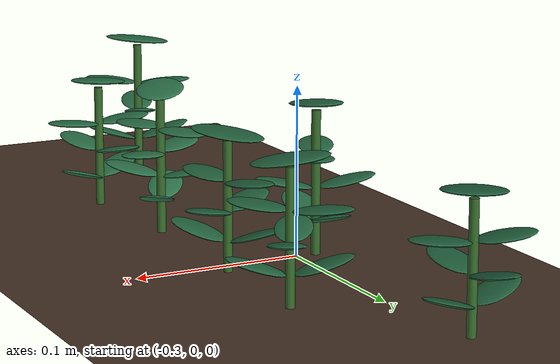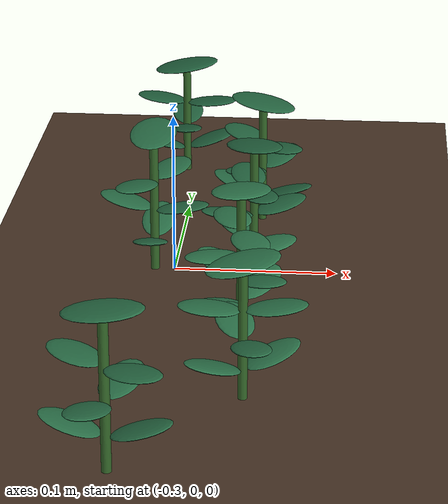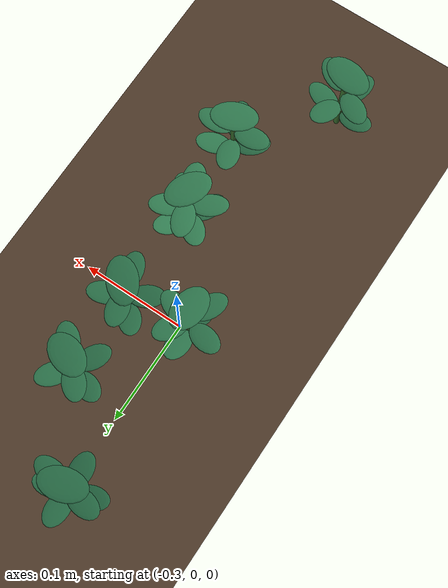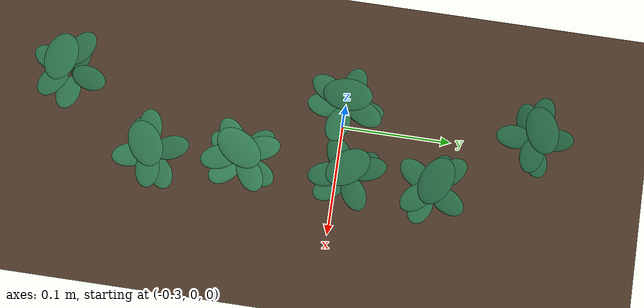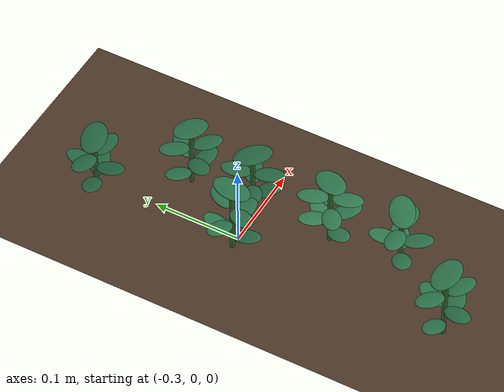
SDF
<sdf version="1.9">
 <world name="jim_field">
  <model name="ground_plane">
   <static>true</static>
   <link name="link">
    <collision name="collision">
     <geometry><plane><normal>0 0 1</normal><size>40 40</size></plane></geometry>
    </collision>
    <visual name="visual">
     <geometry><plane><normal>0 0 1</normal><size>40 40</size></plane></geometry>
     <material>
      <ambient>0.20 0.15 0.11 1</ambient>
      <diffuse>0.30 0.22 0.16 1</diffuse>
      <specular>0.01 0.01 0.01 1</specular>
     </material>
    </visual>
   </link>
  </model>
  <model name="field">
   <static>true</static>
   <pose>0.1837 -0.2516 0 0 0 0</pose>
   <model name="crop_85">
    <static>true</static>
    <pose>-0.4930 0.0031 0 0 0 0</pose>
    <link name="link">
     <visual name="stem">
      <pose>0 0 0.0426 0 0 0</pose>
      <geometry><cylinder><radius>0.0027</radius><length>0.0852</length></cylinder></geometry>
      <material>
       <ambient>0.10 0.22 0.09 1</ambient>
       <diffuse>0.20 0.40 0.16 1</diffuse>
       <specular>0.05 0.06 0.05 1</specular>
      </material>
     </visual>
     <visual name="leaflet_0_0">
      <pose>0.0184 -0.0023 0.0256 0 -0.300 6.1589</pose>
      <geometry><ellipsoid><radii>0.0170 0.0105 0.0016</radii></ellipsoid></geometry>
      <material>
       <ambient>0.086 0.227 0.131 1</ambient>
       <diffuse>0.162 0.433 0.277 1</diffuse>
       <specular>0.05 0.06 0.05 1</specular>
      </material>
     </visual>
     <visual name="leaflet_0_1">
      <pose>-0.0184 0.0023 0.0256 0 -0.300 9.3005</pose>
      <geometry><ellipsoid><radii>0.0170 0.0105 0.0016</radii></ellipsoid></geometry>
      <material>
       <ambient>0.086 0.227 0.131 1</ambient>
       <diffuse>0.162 0.433 0.277 1</diffuse>
       <specular>0.05 0.06 0.05 1</specular>
      </material>
     </visual>
     <visual name="leaflet_1_0">
      <pose>0.0063 0.0175 0.0432 0 -0.200 7.5089</pose>
      <geometry><ellipsoid><radii>0.0170 0.0105 0.0016</radii></ellipsoid></geometry>
      <material>
       <ambient>0.086 0.227 0.131 1</ambient>
       <diffuse>0.162 0.433 0.277 1</diffuse>
       <specular>0.05 0.06 0.05 1</specular>
      </material>
     </visual>
     <visual name="leaflet_1_1">
      <pose>-0.0063 -0.0175 0.0432 0 -0.200 10.6505</pose>
      <geometry><ellipsoid><radii>0.0170 0.0105 0.0016</radii></ellipsoid></geometry>
      <material>
       <ambient>0.086 0.227 0.131 1</ambient>
       <diffuse>0.162 0.433 0.277 1</diffuse>
       <specular>0.05 0.06 0.05 1</specular>
      </material>
     </visual>
     <visual name="leaflet_2_0">
      <pose>-0.0157 0.0099 0.0608 0 -0.100 8.8589</pose>
      <geometry><ellipsoid><radii>0.0170 0.0105 0.0016</radii></ellipsoid></geometry>
      <material>
       <ambient>0.086 0.227 0.131 1</ambient>
       <diffuse>0.162 0.433 0.277 1</diffuse>
       <specular>0.05 0.06 0.05 1</specular>
      </material>
     </visual>
     <visual name="leaflet_2_1">
      <pose>0.0157 -0.0099 0.0608 0 -0.100 12.0005</pose>
      <geometry><ellipsoid><radii>0.0170 0.0105 0.0016</radii></ellipsoid></geometry>
      <material>
       <ambient>0.086 0.227 0.131 1</ambient>
       <diffuse>0.162 0.433 0.277 1</diffuse>
       <specular>0.05 0.06 0.05 1</specular>
      </material>
     </visual>
     <visual name="leaflet_terminal">
      <pose>0 0 0.0892 0 -0.12 6.1589</pose>
      <geometry><ellipsoid><radii>0.0215 0.0140 0.0018</radii></ellipsoid></geometry>
      <material>
       <ambient>0.086 0.227 0.131 1</ambient>
       <diffuse>0.162 0.433 0.277 1</diffuse>
       <specular>0.05 0.06 0.05 1</specular>
      </material>
     </visual>
    </link>
   </model>
   <model name="crop_103">
    <static>true</static>
    <pose>-0.4302 0.0858 0 0 0 0</pose>
    <link name="link">
     <visual name="stem">
      <pose>0 0 0.0377 0 0 0</pose>
      <geometry><cylinder><radius>0.0026</radius><length>0.0755</length></cylinder></geometry>
      <material>
       <ambient>0.10 0.22 0.09 1</ambient>
       <diffuse>0.20 0.40 0.16 1</diffuse>
       <specular>0.05 0.06 0.05 1</specular>
      </material>
     </visual>
     <visual name="leaflet_0_0">
      <pose>0.0155 0.0092 0.0226 0 -0.300 0.5376</pose>
      <geometry><ellipsoid><radii>0.0170 0.0105 0.0016</radii></ellipsoid></geometry>
      <material>
       <ambient>0.092 0.236 0.139 1</ambient>
       <diffuse>0.173 0.452 0.290 1</diffuse>
       <specular>0.05 0.06 0.05 1</specular>
      </material>
     </visual>
     <visual name="leaflet_0_1">
      <pose>-0.0155 -0.0092 0.0226 0 -0.300 3.6792</pose>
      <geometry><ellipsoid><radii>0.0170 0.0105 0.0016</radii></ellipsoid></geometry>
      <material>
       <ambient>0.092 0.236 0.139 1</ambient>
       <diffuse>0.173 0.452 0.290 1</diffuse>
       <specular>0.05 0.06 0.05 1</specular>
      </material>
     </visual>
     <visual name="leaflet_1_0">
      <pose>-0.0056 0.0171 0.0383 0 -0.200 1.8876</pose>
      <geometry><ellipsoid><radii>0.0170 0.0105 0.0016</radii></ellipsoid></geometry>
      <material>
       <ambient>0.092 0.236 0.139 1</ambient>
       <diffuse>0.173 0.452 0.290 1</diffuse>
       <specular>0.05 0.06 0.05 1</specular>
      </material>
     </visual>
     <visual name="leaflet_1_1">
      <pose>0.0056 -0.0171 0.0383 0 -0.200 5.0292</pose>
      <geometry><ellipsoid><radii>0.0170 0.0105 0.0016</radii></ellipsoid></geometry>
      <material>
       <ambient>0.092 0.236 0.139 1</ambient>
       <diffuse>0.173 0.452 0.290 1</diffuse>
       <specular>0.05 0.06 0.05 1</specular>
      </material>
     </visual>
     <visual name="leaflet_2_0">
      <pose>-0.0179 -0.0017 0.0539 0 -0.100 3.2376</pose>
      <geometry><ellipsoid><radii>0.0170 0.0105 0.0016</radii></ellipsoid></geometry>
      <material>
       <ambient>0.092 0.236 0.139 1</ambient>
       <diffuse>0.173 0.452 0.290 1</diffuse>
       <specular>0.05 0.06 0.05 1</specular>
      </material>
     </visual>
     <visual name="leaflet_2_1">
      <pose>0.0179 0.0017 0.0539 0 -0.100 6.3792</pose>
      <geometry><ellipsoid><radii>0.0170 0.0105 0.0016</radii></ellipsoid></geometry>
      <material>
       <ambient>0.092 0.236 0.139 1</ambient>
       <diffuse>0.173 0.452 0.290 1</diffuse>
       <specular>0.05 0.06 0.05 1</specular>
      </material>
     </visual>
     <visual name="leaflet_terminal">
      <pose>0 0 0.0795 0 -0.12 0.5376</pose>
      <geometry><ellipsoid><radii>0.0215 0.0140 0.0018</radii></ellipsoid></geometry>
      <material>
       <ambient>0.092 0.236 0.139 1</ambient>
       <diffuse>0.173 0.452 0.290 1</diffuse>
       <specular>0.05 0.06 0.05 1</specular>
      </material>
     </visual>
    </link>
   </model>
   <model name="crop_120">
    <static>true</static>
    <pose>-0.4367 0.1667 0 0 0 0</pose>
    <link name="link">
     <visual name="stem">
      <pose>0 0 0.0419 0 0 0</pose>
      <geometry><cylinder><radius>0.0027</radius><length>0.0837</length></cylinder></geometry>
      <material>
       <ambient>0.10 0.22 0.09 1</ambient>
       <diffuse>0.20 0.40 0.16 1</diffuse>
       <specular>0.05 0.06 0.05 1</specular>
      </material>
     </visual>
     <visual name="leaflet_0_0">
      <pose>-0.0098 -0.0156 0.0251 0 -0.300 4.1522</pose>
      <geometry><ellipsoid><radii>0.0170 0.0105 0.0016</radii></ellipsoid></geometry>
      <material>
       <ambient>0.098 0.247 0.147 1</ambient>
       <diffuse>0.186 0.473 0.305 1</diffuse>
       <specular>0.05 0.06 0.05 1</specular>
      </material>
     </visual>
     <visual name="leaflet_0_1">
      <pose>0.0098 0.0156 0.0251 0 -0.300 7.2938</pose>
      <geometry><ellipsoid><radii>0.0170 0.0105 0.0016</radii></ellipsoid></geometry>
      <material>
       <ambient>0.098 0.247 0.147 1</ambient>
       <diffuse>0.186 0.473 0.305 1</diffuse>
       <specular>0.05 0.06 0.05 1</specular>
      </material>
     </visual>
     <visual name="leaflet_1_0">
      <pose>0.0131 -0.0130 0.0381 0 -0.200 5.5022</pose>
      <geometry><ellipsoid><radii>0.0170 0.0105 0.0016</radii></ellipsoid></geometry>
      <material>
       <ambient>0.098 0.247 0.147 1</ambient>
       <diffuse>0.186 0.473 0.305 1</diffuse>
       <specular>0.05 0.06 0.05 1</specular>
      </material>
     </visual>
     <visual name="leaflet_1_1">
      <pose>-0.0131 0.0130 0.0381 0 -0.200 8.6438</pose>
      <geometry><ellipsoid><radii>0.0170 0.0105 0.0016</radii></ellipsoid></geometry>
      <material>
       <ambient>0.098 0.247 0.147 1</ambient>
       <diffuse>0.186 0.473 0.305 1</diffuse>
       <specular>0.05 0.06 0.05 1</specular>
      </material>
     </visual>
     <visual name="leaflet_2_0">
      <pose>0.0156 0.0099 0.0511 0 -0.100 6.8522</pose>
      <geometry><ellipsoid><radii>0.0170 0.0105 0.0016</radii></ellipsoid></geometry>
      <material>
       <ambient>0.098 0.247 0.147 1</ambient>
       <diffuse>0.186 0.473 0.305 1</diffuse>
       <specular>0.05 0.06 0.05 1</specular>
      </material>
     </visual>
     <visual name="leaflet_2_1">
      <pose>-0.0156 -0.0099 0.0511 0 -0.100 9.9938</pose>
      <geometry><ellipsoid><radii>0.0170 0.0105 0.0016</radii></ellipsoid></geometry>
      <material>
       <ambient>0.098 0.247 0.147 1</ambient>
       <diffuse>0.186 0.473 0.305 1</diffuse>
       <specular>0.05 0.06 0.05 1</specular>
      </material>
     </visual>
     <visual name="leaflet_3_0">
      <pose>-0.0063 0.0174 0.0641 0 0.000 8.2022</pose>
      <geometry><ellipsoid><radii>0.0170 0.0105 0.0016</radii></ellipsoid></geometry>
      <material>
       <ambient>0.098 0.247 0.147 1</ambient>
       <diffuse>0.186 0.473 0.305 1</diffuse>
       <specular>0.05 0.06 0.05 1</specular>
      </material>
     </visual>
     <visual name="leaflet_3_1">
      <pose>0.0063 -0.0174 0.0641 0 0.000 11.3438</pose>
      <geometry><ellipsoid><radii>0.0170 0.0105 0.0016</radii></ellipsoid></geometry>
      <material>
       <ambient>0.098 0.247 0.147 1</ambient>
       <diffuse>0.186 0.473 0.305 1</diffuse>
       <specular>0.05 0.06 0.05 1</specular>
      </material>
     </visual>
     <visual name="leaflet_terminal">
      <pose>0 0 0.0877 0 -0.12 4.1522</pose>
      <geometry><ellipsoid><radii>0.0215 0.0140 0.0018</radii></ellipsoid></geometry>
      <material>
       <ambient>0.098 0.247 0.147 1</ambient>
       <diffuse>0.186 0.473 0.305 1</diffuse>
       <specular>0.05 0.06 0.05 1</specular>
      </material>
     </visual>
    </link>
   </model>
   <model name="crop_136">
    <static>true</static>
    <pose>-0.4959 0.2518 0 0 0 0</pose>
    <link name="link">
     <visual name="stem">
      <pose>0 0 0.0425 0 0 0</pose>
      <geometry><cylinder><radius>0.0027</radius><length>0.0850</length></cylinder></geometry>
      <material>
       <ambient>0.10 0.22 0.09 1</ambient>
       <diffuse>0.20 0.40 0.16 1</diffuse>
       <specular>0.05 0.06 0.05 1</specular>
      </material>
     </visual>
     <visual name="leaflet_0_0">
      <pose>0.0007 0.0185 0.0255 0 -0.300 1.5306</pose>
      <geometry><ellipsoid><radii>0.0170 0.0105 0.0016</radii></ellipsoid></geometry>
      <material>
       <ambient>0.087 0.228 0.132 1</ambient>
       <diffuse>0.163 0.435 0.279 1</diffuse>
       <specular>0.05 0.06 0.05 1</specular>
      </material>
     </visual>
     <visual name="leaflet_0_1">
      <pose>-0.0007 -0.0185 0.0255 0 -0.300 4.6722</pose>
      <geometry><ellipsoid><radii>0.0170 0.0105 0.0016</radii></ellipsoid></geometry>
      <material>
       <ambient>0.087 0.228 0.132 1</ambient>
       <diffuse>0.163 0.435 0.279 1</diffuse>
       <specular>0.05 0.06 0.05 1</specular>
      </material>
     </visual>
     <visual name="leaflet_1_0">
      <pose>-0.0179 0.0048 0.0431 0 -0.200 2.8806</pose>
      <geometry><ellipsoid><radii>0.0170 0.0105 0.0016</radii></ellipsoid></geometry>
      <material>
       <ambient>0.087 0.228 0.132 1</ambient>
       <diffuse>0.163 0.435 0.279 1</diffuse>
       <specular>0.05 0.06 0.05 1</specular>
      </material>
     </visual>
     <visual name="leaflet_1_1">
      <pose>0.0179 -0.0048 0.0431 0 -0.200 6.0222</pose>
      <geometry><ellipsoid><radii>0.0170 0.0105 0.0016</radii></ellipsoid></geometry>
      <material>
       <ambient>0.087 0.228 0.132 1</ambient>
       <diffuse>0.163 0.435 0.279 1</diffuse>
       <specular>0.05 0.06 0.05 1</specular>
      </material>
     </visual>
     <visual name="leaflet_2_0">
      <pose>-0.0086 -0.0164 0.0607 0 -0.100 4.2306</pose>
      <geometry><ellipsoid><radii>0.0170 0.0105 0.0016</radii></ellipsoid></geometry>
      <material>
       <ambient>0.087 0.228 0.132 1</ambient>
       <diffuse>0.163 0.435 0.279 1</diffuse>
       <specular>0.05 0.06 0.05 1</specular>
      </material>
     </visual>
     <visual name="leaflet_2_1">
      <pose>0.0086 0.0164 0.0607 0 -0.100 7.3722</pose>
      <geometry><ellipsoid><radii>0.0170 0.0105 0.0016</radii></ellipsoid></geometry>
      <material>
       <ambient>0.087 0.228 0.132 1</ambient>
       <diffuse>0.163 0.435 0.279 1</diffuse>
       <specular>0.05 0.06 0.05 1</specular>
      </material>
     </visual>
     <visual name="leaflet_terminal">
      <pose>0 0 0.0890 0 -0.12 1.5306</pose>
      <geometry><ellipsoid><radii>0.0215 0.0140 0.0018</radii></ellipsoid></geometry>
      <material>
       <ambient>0.087 0.228 0.132 1</ambient>
       <diffuse>0.163 0.435 0.279 1</diffuse>
       <specular>0.05 0.06 0.05 1</specular>
      </material>
     </visual>
    </link>
   </model>
   <model name="crop_137">
    <static>true</static>
    <pose>-0.4352 0.2609 0 0 0 0</pose>
    <link name="link">
     <visual name="stem">
      <pose>0 0 0.0376 0 0 0</pose>
      <geometry><cylinder><radius>0.0026</radius><length>0.0752</length></cylinder></geometry>
      <material>
       <ambient>0.10 0.22 0.09 1</ambient>
       <diffuse>0.20 0.40 0.16 1</diffuse>
       <specular>0.05 0.06 0.05 1</specular>
      </material>
     </visual>
     <visual name="leaflet_0_0">
      <pose>0.0118 -0.0136 0.0226 0 -0.300 5.4261</pose>
      <geometry><ellipsoid><radii>0.0170 0.0105 0.0016</radii></ellipsoid></geometry>
      <material>
       <ambient>0.078 0.214 0.121 1</ambient>
       <diffuse>0.147 0.408 0.259 1</diffuse>
       <specular>0.05 0.06 0.05 1</specular>
      </material>
     </visual>
     <visual name="leaflet_0_1">
      <pose>-0.0118 0.0136 0.0226 0 -0.300 8.5677</pose>
      <geometry><ellipsoid><radii>0.0170 0.0105 0.0016</radii></ellipsoid></geometry>
      <material>
       <ambient>0.078 0.214 0.121 1</ambient>
       <diffuse>0.147 0.408 0.259 1</diffuse>
       <specular>0.05 0.06 0.05 1</specular>
      </material>
     </visual>
     <visual name="leaflet_1_0">
      <pose>0.0159 0.0085 0.0381 0 -0.200 6.7761</pose>
      <geometry><ellipsoid><radii>0.0170 0.0105 0.0016</radii></ellipsoid></geometry>
      <material>
       <ambient>0.078 0.214 0.121 1</ambient>
       <diffuse>0.147 0.408 0.259 1</diffuse>
       <specular>0.05 0.06 0.05 1</specular>
      </material>
     </visual>
     <visual name="leaflet_1_1">
      <pose>-0.0159 -0.0085 0.0381 0 -0.200 9.9177</pose>
      <geometry><ellipsoid><radii>0.0170 0.0105 0.0016</radii></ellipsoid></geometry>
      <material>
       <ambient>0.078 0.214 0.121 1</ambient>
       <diffuse>0.147 0.408 0.259 1</diffuse>
       <specular>0.05 0.06 0.05 1</specular>
      </material>
     </visual>
     <visual name="leaflet_2_0">
      <pose>-0.0048 0.0174 0.0537 0 -0.100 8.1261</pose>
      <geometry><ellipsoid><radii>0.0170 0.0105 0.0016</radii></ellipsoid></geometry>
      <material>
       <ambient>0.078 0.214 0.121 1</ambient>
       <diffuse>0.147 0.408 0.259 1</diffuse>
       <specular>0.05 0.06 0.05 1</specular>
      </material>
     </visual>
     <visual name="leaflet_2_1">
      <pose>0.0048 -0.0174 0.0537 0 -0.100 11.2677</pose>
      <geometry><ellipsoid><radii>0.0170 0.0105 0.0016</radii></ellipsoid></geometry>
      <material>
       <ambient>0.078 0.214 0.121 1</ambient>
       <diffuse>0.147 0.408 0.259 1</diffuse>
       <specular>0.05 0.06 0.05 1</specular>
      </material>
     </visual>
     <visual name="leaflet_terminal">
      <pose>0 0 0.0792 0 -0.12 5.4261</pose>
      <geometry><ellipsoid><radii>0.0215 0.0140 0.0018</radii></ellipsoid></geometry>
      <material>
       <ambient>0.078 0.214 0.121 1</ambient>
       <diffuse>0.147 0.408 0.259 1</diffuse>
       <specular>0.05 0.06 0.05 1</specular>
      </material>
     </visual>
    </link>
   </model>
   <model name="crop_154">
    <static>true</static>
    <pose>-0.4343 0.3370 0 0 0 0</pose>
    <link name="link">
     <visual name="stem">
      <pose>0 0 0.0382 0 0 0</pose>
      <geometry><cylinder><radius>0.0026</radius><length>0.0764</length></cylinder></geometry>
      <material>
       <ambient>0.10 0.22 0.09 1</ambient>
       <diffuse>0.20 0.40 0.16 1</diffuse>
       <specular>0.05 0.06 0.05 1</specular>
      </material>
     </visual>
     <visual name="leaflet_0_0">
      <pose>-0.0169 0.0065 0.0229 0 -0.300 2.7741</pose>
      <geometry><ellipsoid><radii>0.0170 0.0105 0.0016</radii></ellipsoid></geometry>
      <material>
       <ambient>0.080 0.217 0.124 1</ambient>
       <diffuse>0.151 0.415 0.264 1</diffuse>
       <specular>0.05 0.06 0.05 1</specular>
      </material>
     </visual>
     <visual name="leaflet_0_1">
      <pose>0.0169 -0.0065 0.0229 0 -0.300 5.9157</pose>
      <geometry><ellipsoid><radii>0.0170 0.0105 0.0016</radii></ellipsoid></geometry>
      <material>
       <ambient>0.080 0.217 0.124 1</ambient>
       <diffuse>0.151 0.415 0.264 1</diffuse>
       <specular>0.05 0.06 0.05 1</specular>
      </material>
     </visual>
     <visual name="leaflet_1_0">
      <pose>-0.0100 -0.0150 0.0387 0 -0.200 4.1241</pose>
      <geometry><ellipsoid><radii>0.0170 0.0105 0.0016</radii></ellipsoid></geometry>
      <material>
       <ambient>0.080 0.217 0.124 1</ambient>
       <diffuse>0.151 0.415 0.264 1</diffuse>
       <specular>0.05 0.06 0.05 1</specular>
      </material>
     </visual>
     <visual name="leaflet_1_1">
      <pose>0.0100 0.0150 0.0387 0 -0.200 7.2657</pose>
      <geometry><ellipsoid><radii>0.0170 0.0105 0.0016</radii></ellipsoid></geometry>
      <material>
       <ambient>0.080 0.217 0.124 1</ambient>
       <diffuse>0.151 0.415 0.264 1</diffuse>
       <specular>0.05 0.06 0.05 1</specular>
      </material>
     </visual>
     <visual name="leaflet_2_0">
      <pose>0.0125 -0.0131 0.0545 0 -0.100 5.4741</pose>
      <geometry><ellipsoid><radii>0.0170 0.0105 0.0016</radii></ellipsoid></geometry>
      <material>
       <ambient>0.080 0.217 0.124 1</ambient>
       <diffuse>0.151 0.415 0.264 1</diffuse>
       <specular>0.05 0.06 0.05 1</specular>
      </material>
     </visual>
     <visual name="leaflet_2_1">
      <pose>-0.0125 0.0131 0.0545 0 -0.100 8.6157</pose>
      <geometry><ellipsoid><radii>0.0170 0.0105 0.0016</radii></ellipsoid></geometry>
      <material>
       <ambient>0.080 0.217 0.124 1</ambient>
       <diffuse>0.151 0.415 0.264 1</diffuse>
       <specular>0.05 0.06 0.05 1</specular>
      </material>
     </visual>
     <visual name="leaflet_terminal">
      <pose>0 0 0.0804 0 -0.12 2.7741</pose>
      <geometry><ellipsoid><radii>0.0215 0.0140 0.0018</radii></ellipsoid></geometry>
      <material>
       <ambient>0.080 0.217 0.124 1</ambient>
       <diffuse>0.151 0.415 0.264 1</diffuse>
       <specular>0.05 0.06 0.05 1</specular>
      </material>
     </visual>
    </link>
   </model>
   <model name="crop_170">
    <static>true</static>
    <pose>-0.4919 0.4222 0 0 0 0</pose>
    <link name="link">
     <visual name="stem">
      <pose>0 0 0.0361 0 0 0</pose>
      <geometry><cylinder><radius>0.0026</radius><length>0.0722</length></cylinder></geometry>
      <material>
       <ambient>0.10 0.22 0.09 1</ambient>
       <diffuse>0.20 0.40 0.16 1</diffuse>
       <specular>0.05 0.06 0.05 1</specular>
      </material>
     </visual>
     <visual name="leaflet_0_0">
      <pose>0.0171 0.0050 0.0217 0 -0.300 0.2848</pose>
      <geometry><ellipsoid><radii>0.0170 0.0105 0.0016</radii></ellipsoid></geometry>
      <material>
       <ambient>0.071 0.202 0.111 1</ambient>
       <diffuse>0.132 0.384 0.243 1</diffuse>
       <specular>0.05 0.06 0.05 1</specular>
      </material>
     </visual>
     <visual name="leaflet_0_1">
      <pose>-0.0171 -0.0050 0.0217 0 -0.300 3.4264</pose>
      <geometry><ellipsoid><radii>0.0170 0.0105 0.0016</radii></ellipsoid></geometry>
      <material>
       <ambient>0.071 0.202 0.111 1</ambient>
       <diffuse>0.132 0.384 0.243 1</diffuse>
       <specular>0.05 0.06 0.05 1</specular>
      </material>
     </visual>
     <visual name="leaflet_1_0">
      <pose>-0.0011 0.0178 0.0366 0 -0.200 1.6348</pose>
      <geometry><ellipsoid><radii>0.0170 0.0105 0.0016</radii></ellipsoid></geometry>
      <material>
       <ambient>0.071 0.202 0.111 1</ambient>
       <diffuse>0.132 0.384 0.243 1</diffuse>
       <specular>0.05 0.06 0.05 1</specular>
      </material>
     </visual>
     <visual name="leaflet_1_1">
      <pose>0.0011 -0.0178 0.0366 0 -0.200 4.7764</pose>
      <geometry><ellipsoid><radii>0.0170 0.0105 0.0016</radii></ellipsoid></geometry>
      <material>
       <ambient>0.071 0.202 0.111 1</ambient>
       <diffuse>0.132 0.384 0.243 1</diffuse>
       <specular>0.05 0.06 0.05 1</specular>
      </material>
     </visual>
     <visual name="leaflet_2_0">
      <pose>-0.0176 0.0028 0.0515 0 -0.100 2.9848</pose>
      <geometry><ellipsoid><radii>0.0170 0.0105 0.0016</radii></ellipsoid></geometry>
      <material>
       <ambient>0.071 0.202 0.111 1</ambient>
       <diffuse>0.132 0.384 0.243 1</diffuse>
       <specular>0.05 0.06 0.05 1</specular>
      </material>
     </visual>
     <visual name="leaflet_2_1">
      <pose>0.0176 -0.0028 0.0515 0 -0.100 6.1264</pose>
      <geometry><ellipsoid><radii>0.0170 0.0105 0.0016</radii></ellipsoid></geometry>
      <material>
       <ambient>0.071 0.202 0.111 1</ambient>
       <diffuse>0.132 0.384 0.243 1</diffuse>
       <specular>0.05 0.06 0.05 1</specular>
      </material>
     </visual>
     <visual name="leaflet_terminal">
      <pose>0 0 0.0762 0 -0.12 0.2848</pose>
      <geometry><ellipsoid><radii>0.0215 0.0140 0.0018</radii></ellipsoid></geometry>
      <material>
       <ambient>0.071 0.202 0.111 1</ambient>
       <diffuse>0.132 0.384 0.243 1</diffuse>
       <specular>0.05 0.06 0.05 1</specular>
      </material>
     </visual>
    </link>
   </model>
  </model>
 </world>
</sdf>
